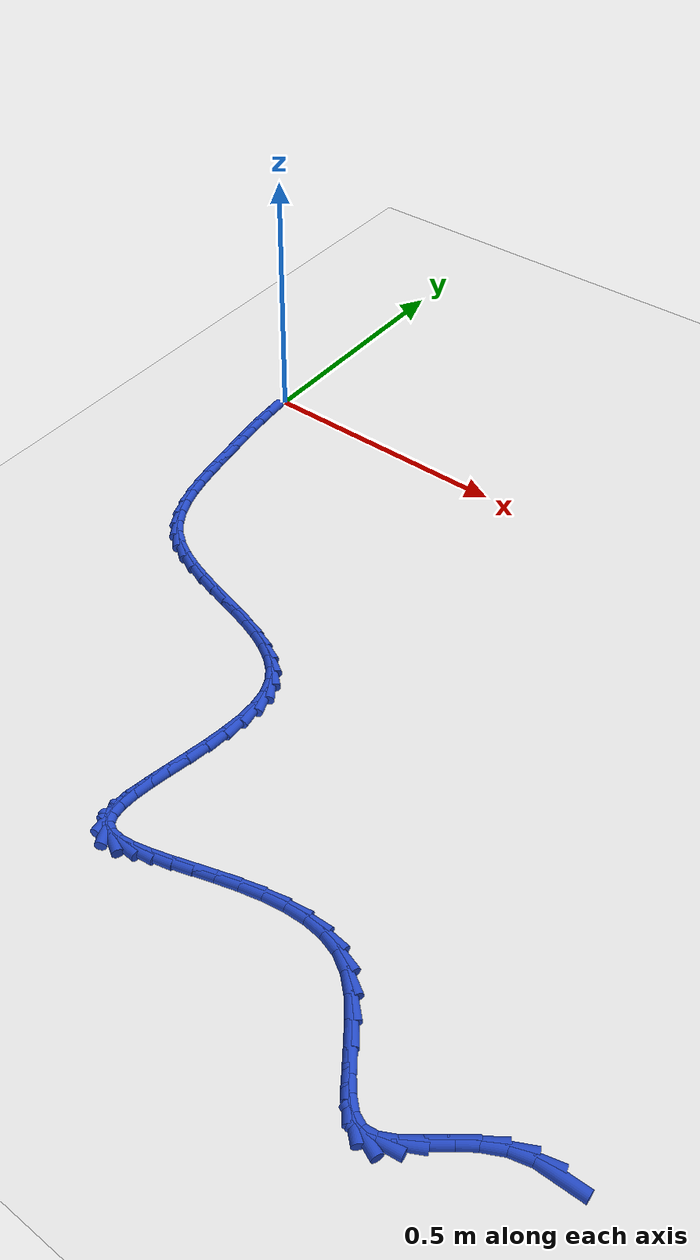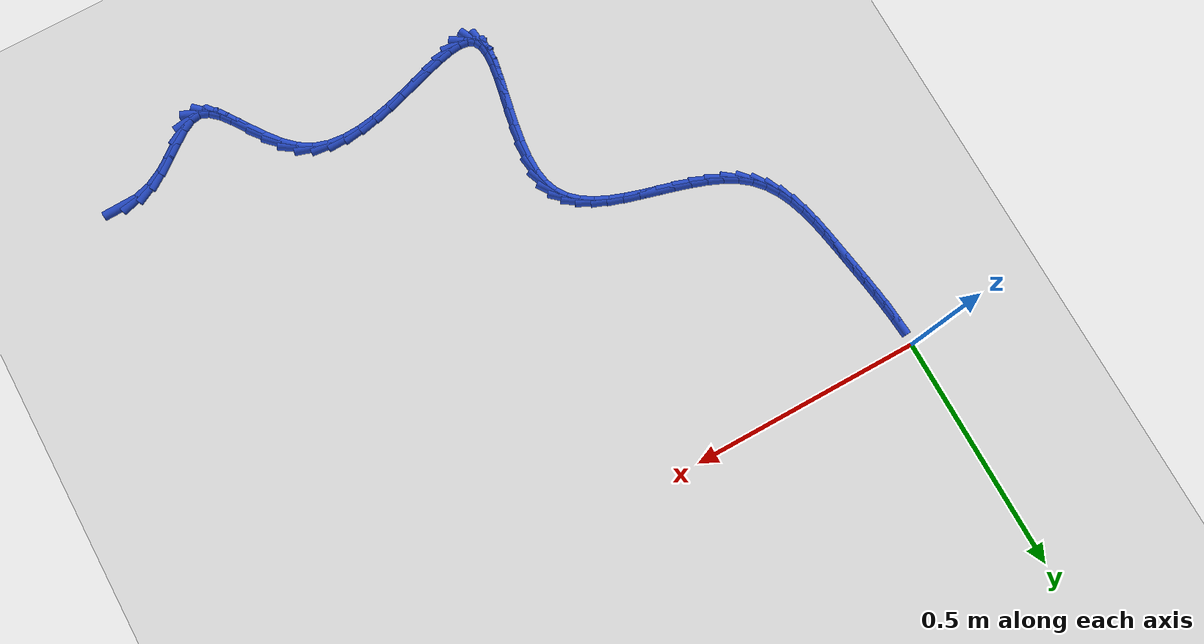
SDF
<sdf version="1.6">
 <world name="default">
  <model name="ground_plane">
   <static>1</static>
   <link name="link">
    <collision name="collision">
     <geometry><plane><normal>0 0 1</normal><size>100 100</size></plane></geometry>
     <surface><friction><ode><mu>100</mu><mu2>50</mu2></ode></friction></surface>
    </collision>
    <visual name="visual">
     <cast_shadows>0</cast_shadows>
     <geometry><plane><normal>0 0 1</normal><size>100 100</size></plane></geometry>
     <material>
      <script><uri>file://media/materials/scripts/gazebo.material</uri><name>Gazebo/WhiteGlow</name></script>
     </material>
    </visual>
   </link>
  </model>
  <model name="line">
   <link name="link_201">
    <pose>1.2782852491296195 -1.034169241811375 0.01 0 1.57 0.03010197148781163</pose>
    <collision name="collision">
     <geometry><cylinder><radius>0.01</radius><length>0.08</length></cylinder></geometry>
    </collision>
    <visual name="visual">
     <material>
      <script><name>Gazebo/Blue</name><uri>file://media/materials/scripts/gazebo.material</uri></script>
     </material>
     <geometry><cylinder><radius>0.01</radius><length>0.08</length></cylinder></geometry>
    </visual>
   </link>
   <link name="link_202">
    <pose>1.2419208620529707 -1.0352642123023665 0.01 0 1.57 0.26777520967814455</pose>
    <collision name="collision">
     <geometry><cylinder><radius>0.01</radius><length>0.08</length></cylinder></geometry>
    </collision>
    <visual name="visual">
     <material>
      <script><name>Gazebo/Blue</name><uri>file://media/materials/scripts/gazebo.material</uri></script>
     </material>
     <geometry><cylinder><radius>0.01</radius><length>0.08</length></cylinder></geometry>
    </visual>
   </link>
   <link name="link_203">
    <pose>1.207725733391031 -1.044646138518121 0.01 0 1.57 0.4852298560357493</pose>
    <collision name="collision">
     <geometry><cylinder><radius>0.01</radius><length>0.08</length></cylinder></geometry>
    </collision>
    <visual name="visual">
     <material>
      <script><name>Gazebo/Blue</name><uri>file://media/materials/scripts/gazebo.material</uri></script>
     </material>
     <geometry><cylinder><radius>0.01</radius><length>0.08</length></cylinder></geometry>
    </visual>
   </link>
   <link name="link_204">
    <pose>1.1759926435697527 -1.061378247462297 0.01 0 1.57 0.615958912828539</pose>
    <collision name="collision">
     <geometry><cylinder><radius>0.01</radius><length>0.08</length></cylinder></geometry>
    </collision>
    <visual name="visual">
     <material>
      <script><name>Gazebo/Blue</name><uri>file://media/materials/scripts/gazebo.material</uri></script>
     </material>
     <geometry><cylinder><radius>0.01</radius><length>0.08</length></cylinder></geometry>
    </visual>
   </link>
   <link name="link_205">
    <pose>1.1465999993271836 -1.0821831203023378 0.01 0 1.57 0.6681568193369394</pose>
    <collision name="collision">
     <geometry><cylinder><radius>0.01</radius><length>0.08</length></cylinder></geometry>
    </collision>
    <visual name="visual">
     <material>
      <script><name>Gazebo/Blue</name><uri>file://media/materials/scripts/gazebo.material</uri></script>
     </material>
     <geometry><cylinder><radius>0.01</radius><length>0.08</length></cylinder></geometry>
    </visual>
   </link>
   <link name="link_206">
    <pose>1.1194024305756598 -1.103649031588898 0.01 0 1.57 0.639783481457426</pose>
    <collision name="collision">
     <geometry><cylinder><radius>0.01</radius><length>0.08</length></cylinder></geometry>
    </collision>
    <visual name="visual">
     <material>
      <script><name>Gazebo/Blue</name><uri>file://media/materials/scripts/gazebo.material</uri></script>
     </material>
     <geometry><cylinder><radius>0.01</radius><length>0.08</length></cylinder></geometry>
    </visual>
   </link>
   <link name="link_207">
    <pose>1.0942545672275144 -1.122364255872635 0.01 0 1.57 0.49517678795158004</pose>
    <collision name="collision">
     <geometry><cylinder><radius>0.01</radius><length>0.08</length></cylinder></geometry>
    </collision>
    <visual name="visual">
     <material>
      <script><name>Gazebo/Blue</name><uri>file://media/materials/scripts/gazebo.material</uri></script>
     </material>
     <geometry><cylinder><radius>0.01</radius><length>0.08</length></cylinder></geometry>
    </visual>
   </link>
   <link name="link_208">
    <pose>1.0710110391950827 -1.1349170677042033 0.01 0 1.57 0.1378842615641196</pose>
    <collision name="collision">
     <geometry><cylinder><radius>0.01</radius><length>0.08</length></cylinder></geometry>
    </collision>
    <visual name="visual">
     <material>
      <script><name>Gazebo/Blue</name><uri>file://media/materials/scripts/gazebo.material</uri></script>
     </material>
     <geometry><cylinder><radius>0.01</radius><length>0.08</length></cylinder></geometry>
    </visual>
   </link>
   <link name="link_209">
    <pose>1.0495262373664125 -1.1378984015051912 0.01 0 1.57 -0.4021569375071794</pose>
    <collision name="collision">
     <geometry><cylinder><radius>0.01</radius><length>0.08</length></cylinder></geometry>
    </collision>
    <visual name="visual">
     <material>
      <script><name>Gazebo/Blue</name><uri>file://media/materials/scripts/gazebo.material</uri></script>
     </material>
     <geometry><cylinder><radius>0.01</radius><length>0.08</length></cylinder></geometry>
    </visual>
   </link>
   <link name="link_210">
    <pose>1.0295206500767977 -1.1293892641713648 0.01 0 1.57 -0.7527372762433178</pose>
    <collision name="collision">
     <geometry><cylinder><radius>0.01</radius><length>0.08</length></cylinder></geometry>
    </collision>
    <visual name="visual">
     <material>
      <script><name>Gazebo/Blue</name><uri>file://media/materials/scripts/gazebo.material</uri></script>
     </material>
     <geometry><cylinder><radius>0.01</radius><length>0.08</length></cylinder></geometry>
    </visual>
   </link>
   <link name="link_211">
    <pose>1.0103581312698602 -1.1114393030719851 0.01 0 1.57 -0.9144947390034753</pose>
    <collision name="collision">
     <geometry><cylinder><radius>0.01</radius><length>0.08</length></cylinder></geometry>
    </collision>
    <visual name="visual">
     <material>
      <script><name>Gazebo/Blue</name><uri>file://media/materials/scripts/gazebo.material</uri></script>
     </material>
     <geometry><cylinder><radius>0.01</radius><length>0.08</length></cylinder></geometry>
    </visual>
   </link>
   <link name="link_212">
    <pose>0.9913438102583627 -1.086751655403077 0.01 0 1.57 -0.972908167128245</pose>
    <collision name="collision">
     <geometry><cylinder><radius>0.01</radius><length>0.08</length></cylinder></geometry>
    </collision>
    <visual name="visual">
     <material>
      <script><name>Gazebo/Blue</name><uri>file://media/materials/scripts/gazebo.material</uri></script>
     </material>
     <geometry><cylinder><radius>0.01</radius><length>0.08</length></cylinder></geometry>
    </visual>
   </link>
   <link name="link_213">
    <pose>0.971782816355064 -1.0580294583606606 0.01 0 1.57 -0.9653373077936501</pose>
    <collision name="collision">
     <geometry><cylinder><radius>0.01</radius><length>0.08</length></cylinder></geometry>
    </collision>
    <visual name="visual">
     <material>
      <script><name>Gazebo/Blue</name><uri>file://media/materials/scripts/gazebo.material</uri></script>
     </material>
     <geometry><cylinder><radius>0.01</radius><length>0.08</length></cylinder></geometry>
    </visual>
   </link>
   <link name="link_214">
    <pose>0.9509802788727268 -1.0279758491407613 0.01 0 1.57 -0.9004620595122805</pose>
    <collision name="collision">
     <geometry><cylinder><radius>0.01</radius><length>0.08</length></cylinder></geometry>
    </collision>
    <visual name="visual">
     <material>
      <script><name>Gazebo/Blue</name><uri>file://media/materials/scripts/gazebo.material</uri></script>
     </material>
     <geometry><cylinder><radius>0.01</radius><length>0.08</length></cylinder></geometry>
    </visual>
   </link>
   <link name="link_215">
    <pose>0.9282413271241113 -0.9992939649394003 0.01 0 1.57 -0.7701281103035164</pose>
    <collision name="collision">
     <geometry><cylinder><radius>0.01</radius><length>0.08</length></cylinder></geometry>
    </collision>
    <visual name="visual">
     <material>
      <script><name>Gazebo/Blue</name><uri>file://media/materials/scripts/gazebo.material</uri></script>
     </material>
     <geometry><cylinder><radius>0.01</radius><length>0.08</length></cylinder></geometry>
    </visual>
   </link>
   <link name="link_216">
    <pose>0.9028710904219779 -0.9746869429526002 0.01 0 1.57 -0.5580387613973343</pose>
    <collision name="collision">
     <geometry><cylinder><radius>0.01</radius><length>0.08</length></cylinder></geometry>
    </collision>
    <visual name="visual">
     <material>
      <script><name>Gazebo/Blue</name><uri>file://media/materials/scripts/gazebo.material</uri></script>
     </material>
     <geometry><cylinder><radius>0.01</radius><length>0.08</length></cylinder></geometry>
    </visual>
   </link>
   <link name="link_217">
    <pose>0.8742000692010117 -0.9567898965084305 0.01 0 1.57 -0.31258239654138237</pose>
    <collision name="collision">
     <geometry><cylinder><radius>0.01</radius><length>0.08</length></cylinder></geometry>
    </collision>
    <visual name="visual">
     <material>
      <script><name>Gazebo/Blue</name><uri>file://media/materials/scripts/gazebo.material</uri></script>
     </material>
     <geometry><cylinder><radius>0.01</radius><length>0.08</length></cylinder></geometry>
    </visual>
   </link>
   <link name="link_218">
    <pose>0.8422234608979583 -0.9464557843564004 0.01 0 1.57 -0.11033810644250042</pose>
    <collision name="collision">
     <geometry><cylinder><radius>0.01</radius><length>0.08</length></cylinder></geometry>
    </collision>
    <visual name="visual">
     <material>
      <script><name>Gazebo/Blue</name><uri>file://media/materials/scripts/gazebo.material</uri></script>
     </material>
     <geometry><cylinder><radius>0.01</radius><length>0.08</length></cylinder></geometry>
    </visual>
   </link>
   <link name="link_219">
    <pose>0.8076496438300989 -0.9426254179554027 0.01 0 1.57 0.041705959419465664</pose>
    <collision name="collision">
     <geometry><cylinder><radius>0.01</radius><length>0.08</length></cylinder></geometry>
    </collision>
    <visual name="visual">
     <material>
      <script><name>Gazebo/Blue</name><uri>file://media/materials/scripts/gazebo.material</uri></script>
     </material>
     <geometry><cylinder><radius>0.01</radius><length>0.08</length></cylinder></geometry>
    </visual>
   </link>
   <link name="link_220">
    <pose>0.7712220792819201 -0.944145545950068 0.01 0 1.57 0.15114785216812648</pose>
    <collision name="collision">
     <geometry><cylinder><radius>0.01</radius><length>0.08</length></cylinder></geometry>
    </collision>
    <visual name="visual">
     <material>
      <script><name>Gazebo/Blue</name><uri>file://media/materials/scripts/gazebo.material</uri></script>
     </material>
     <geometry><cylinder><radius>0.01</radius><length>0.08</length></cylinder></geometry>
    </visual>
   </link>
   <link name="link_221">
    <pose>0.7336842285379137 -0.9498629169850284 0.01 0 1.57 0.22715274498045002</pose>
    <collision name="collision">
     <geometry><cylinder><radius>0.01</radius><length>0.08</length></cylinder></geometry>
    </collision>
    <visual name="visual">
     <material>
      <script><name>Gazebo/Blue</name><uri>file://media/materials/scripts/gazebo.material</uri></script>
     </material>
     <geometry><cylinder><radius>0.01</radius><length>0.08</length></cylinder></geometry>
    </visual>
   </link>
   <link name="link_222">
    <pose>0.6957795528825667 -0.9586242797049166 0.01 0 1.57 0.2765695326118681</pose>
    <collision name="collision">
     <geometry><cylinder><radius>0.01</radius><length>0.08</length></cylinder></geometry>
    </collision>
    <visual name="visual">
     <material>
      <script><name>Gazebo/Blue</name><uri>file://media/materials/scripts/gazebo.material</uri></script>
     </material>
     <geometry><cylinder><radius>0.01</radius><length>0.08</length></cylinder></geometry>
    </visual>
   </link>
   <link name="link_223">
    <pose>0.6582515136003706 -0.9692763827543631 0.01 0 1.57 0.30318787356138066</pose>
    <collision name="collision">
     <geometry><cylinder><radius>0.01</radius><length>0.08</length></cylinder></geometry>
    </collision>
    <visual name="visual">
     <material>
      <script><name>Gazebo/Blue</name><uri>file://media/materials/scripts/gazebo.material</uri></script>
     </material>
     <geometry><cylinder><radius>0.01</radius><length>0.08</length></cylinder></geometry>
    </visual>
   </link>
   <link name="link_224">
    <pose>0.6218435719758129 -0.9806659747780012 0.01 0 1.57 0.30759098639738786</pose>
    <collision name="collision">
     <geometry><cylinder><radius>0.01</radius><length>0.08</length></cylinder></geometry>
    </collision>
    <visual name="visual">
     <material>
      <script><name>Gazebo/Blue</name><uri>file://media/materials/scripts/gazebo.material</uri></script>
     </material>
     <geometry><cylinder><radius>0.01</radius><length>0.08</length></cylinder></geometry>
    </visual>
   </link>
   <link name="link_225">
    <pose>0.5872991892933844 -0.9916398044204616 0.01 0 1.57 0.28638207153162487</pose>
    <collision name="collision">
     <geometry><cylinder><radius>0.01</radius><length>0.08</length></cylinder></geometry>
    </collision>
    <visual name="visual">
     <material>
      <script><name>Gazebo/Blue</name><uri>file://media/materials/scripts/gazebo.material</uri></script>
     </material>
     <geometry><cylinder><radius>0.01</radius><length>0.08</length></cylinder></geometry>
    </visual>
   </link>
   <link name="link_226">
    <pose>0.5553618268375737 -1.0010446203263765 0.01 0 1.57 0.229639235563492</pose>
    <collision name="collision">
     <geometry><cylinder><radius>0.01</radius><length>0.08</length></cylinder></geometry>
    </collision>
    <visual name="visual">
     <material>
      <script><name>Gazebo/Blue</name><uri>file://media/materials/scripts/gazebo.material</uri></script>
     </material>
     <geometry><cylinder><radius>0.01</radius><length>0.08</length></cylinder></geometry>
    </visual>
   </link>
   <link name="link_227">
    <pose>0.5267749458928693 -1.0077271711403786 0.01 0 1.57 0.11410801893703401</pose>
    <collision name="collision">
     <geometry><cylinder><radius>0.01</radius><length>0.08</length></cylinder></geometry>
    </collision>
    <visual name="visual">
     <material>
      <script><name>Gazebo/Blue</name><uri>file://media/materials/scripts/gazebo.material</uri></script>
     </material>
     <geometry><cylinder><radius>0.01</radius><length>0.08</length></cylinder></geometry>
    </visual>
   </link>
   <link name="link_228">
    <pose>0.5022820077437621 -1.010534205507099 0.01 0 1.57 -0.11255574463263429</pose>
    <collision name="collision">
     <geometry><cylinder><radius>0.01</radius><length>0.08</length></cylinder></geometry>
    </collision>
    <visual name="visual">
     <material>
      <script><name>Gazebo/Blue</name><uri>file://media/materials/scripts/gazebo.material</uri></script>
     </material>
     <geometry><cylinder><radius>0.01</radius><length>0.08</length></cylinder></geometry>
    </visual>
   </link>
   <link name="link_229">
    <pose>0.4826264736747399 -1.0083124720711696 0.01 0 1.57 -0.5382722628979292</pose>
    <collision name="collision">
     <geometry><cylinder><radius>0.01</radius><length>0.08</length></cylinder></geometry>
    </collision>
    <visual name="visual">
     <material>
      <script><name>Gazebo/Blue</name><uri>file://media/materials/scripts/gazebo.material</uri></script>
     </material>
     <geometry><cylinder><radius>0.01</radius><length>0.08</length></cylinder></geometry>
    </visual>
   </link>
   <link name="link_230">
    <pose>0.46855180497029325 -0.9999087194772224 0.01 0 1.57 -1.090599036576024</pose>
    <collision name="collision">
     <geometry><cylinder><radius>0.01</radius><length>0.08</length></cylinder></geometry>
    </collision>
    <visual name="visual">
     <material>
      <script><name>Gazebo/Blue</name><uri>file://media/materials/scripts/gazebo.material</uri></script>
     </material>
     <geometry><cylinder><radius>0.01</radius><length>0.08</length></cylinder></geometry>
    </visual>
   </link>
   <link name="link_231">
    <pose>0.4605263428157718 -0.9845006693382079 0.01 0 1.57 -1.4457983551452045</pose>
    <collision name="collision">
     <geometry><cylinder><radius>0.01</radius><length>0.08</length></cylinder></geometry>
    </collision>
    <visual name="visual">
     <material>
      <script><name>Gazebo/Blue</name><uri>file://media/materials/scripts/gazebo.material</uri></script>
     </material>
     <geometry><cylinder><radius>0.01</radius><length>0.08</length></cylinder></geometry>
    </visual>
   </link>
   <link name="link_232">
    <pose>0.4577922000103411 -0.9627412115666033 0.01 0 1.57 1.5169505237778111</pose>
    <collision name="collision">
     <geometry><cylinder><radius>0.01</radius><length>0.08</length></cylinder></geometry>
    </collision>
    <visual name="visual">
     <material>
      <script><name>Gazebo/Blue</name><uri>file://media/materials/scripts/gazebo.material</uri></script>
     </material>
     <geometry><cylinder><radius>0.01</radius><length>0.08</length></cylinder></geometry>
    </visual>
   </link>
   <link name="link_233">
    <pose>0.4592499841632871 -0.9356940711492546 0.01 0 1.57 1.4262988968919976</pose>
    <collision name="collision">
     <geometry><cylinder><radius>0.01</radius><length>0.08</length></cylinder></geometry>
    </collision>
    <visual name="visual">
     <material>
      <script><name>Gazebo/Blue</name><uri>file://media/materials/scripts/gazebo.material</uri></script>
     </material>
     <geometry><cylinder><radius>0.01</radius><length>0.08</length></cylinder></geometry>
    </visual>
   </link>
   <link name="link_234">
    <pose>0.46380028850796096 -0.9044229903674428 0.01 0 1.57 1.3829930402699435</pose>
    <collision name="collision">
     <geometry><cylinder><radius>0.01</radius><length>0.08</length></cylinder></geometry>
    </collision>
    <visual name="visual">
     <material>
      <script><name>Gazebo/Blue</name><uri>file://media/materials/scripts/gazebo.material</uri></script>
     </material>
     <geometry><cylinder><radius>0.01</radius><length>0.08</length></cylinder></geometry>
    </visual>
   </link>
   <link name="link_235">
    <pose>0.470343706277714 -0.8699917115024457 0.01 0 1.57 1.3699395959034786</pose>
    <collision name="collision">
     <geometry><cylinder><radius>0.01</radius><length>0.08</length></cylinder></geometry>
    </collision>
    <visual name="visual">
     <material>
      <script><name>Gazebo/Blue</name><uri>file://media/materials/scripts/gazebo.material</uri></script>
     </material>
     <geometry><cylinder><radius>0.01</radius><length>0.08</length></cylinder></geometry>
    </visual>
   </link>
   <link name="link_236">
    <pose>0.4777808307058978 -0.8334639768355415 0.01 0 1.57 1.3805959471654998</pose>
    <collision name="collision">
     <geometry><cylinder><radius>0.01</radius><length>0.08</length></cylinder></geometry>
    </collision>
    <visual name="visual">
     <material>
      <script><name>Gazebo/Blue</name><uri>file://media/materials/scripts/gazebo.material</uri></script>
     </material>
     <geometry><cylinder><radius>0.01</radius><length>0.08</length></cylinder></geometry>
    </visual>
   </link>
   <link name="link_237">
    <pose>0.4850122550258633 -0.7959035286480117 0.01 0 1.57 1.414178340664887</pose>
    <collision name="collision">
     <geometry><cylinder><radius>0.01</radius><length>0.08</length></cylinder></geometry>
    </collision>
    <visual name="visual">
     <material>
      <script><name>Gazebo/Blue</name><uri>file://media/materials/scripts/gazebo.material</uri></script>
     </material>
     <geometry><cylinder><radius>0.01</radius><length>0.08</length></cylinder></geometry>
    </visual>
   </link>
   <link name="link_238">
    <pose>0.490938572470962 -0.7583741092211325 0.01 0 1.57 1.4744348523193962</pose>
    <collision name="collision">
     <geometry><cylinder><radius>0.01</radius><length>0.08</length></cylinder></geometry>
    </collision>
    <visual name="visual">
     <material>
      <script><name>Gazebo/Blue</name><uri>file://media/materials/scripts/gazebo.material</uri></script>
     </material>
     <geometry><cylinder><radius>0.01</radius><length>0.08</length></cylinder></geometry>
    </visual>
   </link>
   <link name="link_239">
    <pose>0.494460376274545 -0.7219394608361855 0.01 0 1.57 1.5702745820368056</pose>
    <collision name="collision">
     <geometry><cylinder><radius>0.01</radius><length>0.08</length></cylinder></geometry>
    </collision>
    <visual name="visual">
     <material>
      <script><name>Gazebo/Blue</name><uri>file://media/materials/scripts/gazebo.material</uri></script>
     </material>
     <geometry><cylinder><radius>0.01</radius><length>0.08</length></cylinder></geometry>
    </visual>
   </link>
   <link name="link_240">
    <pose>0.4944782596699638 -0.6876633257744476 0.01 0 1.57 -1.4241947891159823</pose>
    <collision name="collision">
     <geometry><cylinder><radius>0.01</radius><length>0.08</length></cylinder></geometry>
    </collision>
    <visual name="visual">
     <material>
      <script><name>Gazebo/Blue</name><uri>file://media/materials/scripts/gazebo.material</uri></script>
     </material>
     <geometry><cylinder><radius>0.01</radius><length>0.08</length></cylinder></geometry>
    </visual>
   </link>
   <link name="link_241">
    <pose>0.4898928158905695 -0.6566094463171996 0.01 0 1.57 -1.2066870116404917</pose>
    <collision name="collision">
     <geometry><cylinder><radius>0.01</radius><length>0.08</length></cylinder></geometry>
    </collision>
    <visual name="visual">
     <material>
      <script><name>Gazebo/Blue</name><uri>file://media/materials/scripts/gazebo.material</uri></script>
     </material>
     <geometry><cylinder><radius>0.01</radius><length>0.08</length></cylinder></geometry>
    </visual>
   </link>
   <link name="link_242">
    <pose>0.479669324925111 -0.6297832949327965 0.01 0 1.57 -0.9555218122933083</pose>
    <collision name="collision">
     <geometry><cylinder><radius>0.01</radius><length>0.08</length></cylinder></geometry>
    </collision>
    <visual name="visual">
     <material>
      <script><name>Gazebo/Blue</name><uri>file://media/materials/scripts/gazebo.material</uri></script>
     </material>
     <geometry><cylinder><radius>0.01</radius><length>0.08</length></cylinder></geometry>
    </visual>
   </link>
   <link name="link_243">
    <pose>0.4637716596255746 -0.6072908118906336 0.01 0 1.57 -0.7333145373362878</pose>
    <collision name="collision">
     <geometry><cylinder><radius>0.01</radius><length>0.08</length></cylinder></geometry>
    </collision>
    <visual name="visual">
     <material>
      <script><name>Gazebo/Blue</name><uri>file://media/materials/scripts/gazebo.material</uri></script>
     </material>
     <geometry><cylinder><radius>0.01</radius><length>0.08</length></cylinder></geometry>
    </visual>
   </link>
   <link name="link_244">
    <pose>0.4429484152449068 -0.5885310597195359 0.01 0 1.57 -0.5596079821346868</pose>
    <collision name="collision">
     <geometry><cylinder><radius>0.01</radius><length>0.08</length></cylinder></geometry>
    </collision>
    <visual name="visual">
     <material>
      <script><name>Gazebo/Blue</name><uri>file://media/materials/scripts/gazebo.material</uri></script>
     </material>
     <geometry><cylinder><radius>0.01</radius><length>0.08</length></cylinder></geometry>
    </visual>
   </link>
   <link name="link_245">
    <pose>0.4179693192870567 -0.5728840650219669 0.01 0 1.57 -0.43422476425045237</pose>
    <collision name="collision">
     <geometry><cylinder><radius>0.01</radius><length>0.08</length></cylinder></geometry>
    </collision>
    <visual name="visual">
     <material>
      <script><name>Gazebo/Blue</name><uri>file://media/materials/scripts/gazebo.material</uri></script>
     </material>
     <geometry><cylinder><radius>0.01</radius><length>0.08</length></cylinder></geometry>
    </visual>
   </link>
   <link name="link_246">
    <pose>0.389604099255972 -0.5597298544003889 0.01 0 1.57 -0.3492087406317524</pose>
    <collision name="collision">
     <geometry><cylinder><radius>0.01</radius><length>0.08</length></cylinder></geometry>
    </collision>
    <visual name="visual">
     <material>
      <script><name>Gazebo/Blue</name><uri>file://media/materials/scripts/gazebo.material</uri></script>
     </material>
     <geometry><cylinder><radius>0.01</radius><length>0.08</length></cylinder></geometry>
    </visual>
   </link>
   <link name="link_247">
    <pose>0.3586224826555993 -0.5484484544572638 0.01 0 1.57 -0.29648166202216353</pose>
    <collision name="collision">
     <geometry><cylinder><radius>0.01</radius><length>0.08</length></cylinder></geometry>
    </collision>
    <visual name="visual">
     <material>
      <script><name>Gazebo/Blue</name><uri>file://media/materials/scripts/gazebo.material</uri></script>
     </material>
     <geometry><cylinder><radius>0.01</radius><length>0.08</length></cylinder></geometry>
    </visual>
   </link>
   <link name="link_248">
    <pose>0.32579419698988893 -0.538419891795055 0.01 0 1.57 -0.2703328614460111</pose>
    <collision name="collision">
     <geometry><cylinder><radius>0.01</radius><length>0.08</length></cylinder></geometry>
    </collision>
    <visual name="visual">
     <material>
      <script><name>Gazebo/Blue</name><uri>file://media/materials/scripts/gazebo.material</uri></script>
     </material>
     <geometry><cylinder><radius>0.01</radius><length>0.08</length></cylinder></geometry>
    </visual>
   </link>
   <link name="link_249">
    <pose>0.2918889697627868 -0.5290241930162245 0.01 0 1.57 -0.26767006610871164</pose>
    <collision name="collision">
     <geometry><cylinder><radius>0.01</radius><length>0.08</length></cylinder></geometry>
    </collision>
    <visual name="visual">
     <material>
      <script><name>Gazebo/Blue</name><uri>file://media/materials/scripts/gazebo.material</uri></script>
     </material>
     <geometry><cylinder><radius>0.01</radius><length>0.08</length></cylinder></geometry>
    </visual>
   </link>
   <link name="link_250">
    <pose>0.25767652847824296 -0.5196413847232355 0.01 0 1.57 -0.2877806597331135</pose>
    <collision name="collision">
     <geometry><cylinder><radius>0.01</radius><length>0.08</length></cylinder></geometry>
    </collision>
    <visual name="visual">
     <material>
      <script><name>Gazebo/Blue</name><uri>file://media/materials/scripts/gazebo.material</uri></script>
     </material>
     <geometry><cylinder><radius>0.01</radius><length>0.08</length></cylinder></geometry>
    </visual>
   </link>
   <link name="link_251">
    <pose>0.22392660064020345 -0.5096514935185498 0.01 0 1.57 -0.3321680829139376</pose>
    <collision name="collision">
     <geometry><cylinder><radius>0.01</radius><length>0.08</length></cylinder></geometry>
    </collision>
    <visual name="visual">
     <material>
      <script><name>Gazebo/Blue</name><uri>file://media/materials/scripts/gazebo.material</uri></script>
     </material>
     <geometry><cylinder><radius>0.01</radius><length>0.08</length></cylinder></geometry>
    </visual>
   </link>
   <link name="link_252">
    <pose>0.19140891375261834 -0.49843454600463083 0.01 0 1.57 -0.40449893035414786</pose>
    <collision name="collision">
     <geometry><cylinder><radius>0.01</radius><length>0.08</length></cylinder></geometry>
    </collision>
    <visual name="visual">
     <material>
      <script><name>Gazebo/Blue</name><uri>file://media/materials/scripts/gazebo.material</uri></script>
     </material>
     <geometry><cylinder><radius>0.01</radius><length>0.08</length></cylinder></geometry>
    </visual>
   </link>
   <link name="link_253">
    <pose>0.16089319531943372 -0.4853705687839403 0.01 0 1.57 -0.5103326674878639</pose>
    <collision name="collision">
     <geometry><cylinder><radius>0.01</radius><length>0.08</length></cylinder></geometry>
    </collision>
    <visual name="visual">
     <material>
      <script><name>Gazebo/Blue</name><uri>file://media/materials/scripts/gazebo.material</uri></script>
     </material>
     <geometry><cylinder><radius>0.01</radius><length>0.08</length></cylinder></geometry>
    </visual>
   </link>
   <link name="link_254">
    <pose>0.13314917284459946 -0.4698395884589418 0.01 0 1.57 -0.6557104992946005</pose>
    <collision name="collision">
     <geometry><cylinder><radius>0.01</radius><length>0.08</length></cylinder></geometry>
    </collision>
    <visual name="visual">
     <material>
      <script><name>Gazebo/Blue</name><uri>file://media/materials/scripts/gazebo.material</uri></script>
     </material>
     <geometry><cylinder><radius>0.01</radius><length>0.08</length></cylinder></geometry>
    </visual>
   </link>
   <link name="link_255">
    <pose>0.10894657383206197 -0.4512216316320967 0.01 0 1.57 -0.8359967289902517</pose>
    <collision name="collision">
     <geometry><cylinder><radius>0.01</radius><length>0.08</length></cylinder></geometry>
    </collision>
    <visual name="visual">
     <material>
      <script><name>Gazebo/Blue</name><uri>file://media/materials/scripts/gazebo.material</uri></script>
     </material>
     <geometry><cylinder><radius>0.01</radius><length>0.08</length></cylinder></geometry>
    </visual>
   </link>
   <link name="link_256">
    <pose>0.08890018354849129 -0.4290365647228693 0.01 0 1.57 -1.0047726828247587</pose>
    <collision name="collision">
     <geometry><cylinder><radius>0.01</radius><length>0.08</length></cylinder></geometry>
    </collision>
    <visual name="visual">
     <material>
      <script><name>Gazebo/Blue</name><uri>file://media/materials/scripts/gazebo.material</uri></script>
     </material>
     <geometry><cylinder><radius>0.01</radius><length>0.08</length></cylinder></geometry>
    </visual>
   </link>
   <link name="link_257">
    <pose>0.07274016638621347 -0.4036026498842212 0.01 0 1.57 -1.1414402245546393</pose>
    <collision name="collision">
     <geometry><cylinder><radius>0.01</radius><length>0.08</length></cylinder></geometry>
    </collision>
    <visual name="visual">
     <material>
      <script><name>Gazebo/Blue</name><uri>file://media/materials/scripts/gazebo.material</uri></script>
     </material>
     <geometry><cylinder><radius>0.01</radius><length>0.08</length></cylinder></geometry>
    </visual>
   </link>
   <link name="link_258">
    <pose>0.059883232877897076 -0.37552105037563144 0.01 0 1.57 -1.246213223137936</pose>
    <collision name="collision">
     <geometry><cylinder><radius>0.01</radius><length>0.08</length></cylinder></geometry>
    </collision>
    <visual name="visual">
     <material>
      <script><name>Gazebo/Blue</name><uri>file://media/materials/scripts/gazebo.material</uri></script>
     </material>
     <geometry><cylinder><radius>0.01</radius><length>0.08</length></cylinder></geometry>
    </visual>
   </link>
   <link name="link_259">
    <pose>0.04974572609075681 -0.3453932611047033 0.01 0 1.57 -1.3225824492856473</pose>
    <collision name="collision">
     <geometry><cylinder><radius>0.01</radius><length>0.08</length></cylinder></geometry>
    </collision>
    <visual name="visual">
     <material>
      <script><name>Gazebo/Blue</name><uri>file://media/materials/scripts/gazebo.material</uri></script>
     </material>
     <geometry><cylinder><radius>0.01</radius><length>0.08</length></cylinder></geometry>
    </visual>
   </link>
   <link name="link_260">
    <pose>0.04174398909200611 -0.3138207769790362 0.01 0 1.57 -1.3743950424220905</pose>
    <collision name="collision">
     <geometry><cylinder><radius>0.01</radius><length>0.08</length></cylinder></geometry>
    </collision>
    <visual name="visual">
     <material>
      <script><name>Gazebo/Blue</name><uri>file://media/materials/scripts/gazebo.material</uri></script>
     </material>
     <geometry><cylinder><radius>0.01</radius><length>0.08</length></cylinder></geometry>
    </visual>
   </link>
   <link name="link_261">
    <pose>0.035294364948859486 -0.28140509290623344 0.01 0 1.57 -1.404507674020307</pose>
    <collision name="collision">
     <geometry><cylinder><radius>0.01</radius><length>0.08</length></cylinder></geometry>
    </collision>
    <visual name="visual">
     <material>
      <script><name>Gazebo/Blue</name><uri>file://media/materials/scripts/gazebo.material</uri></script>
     </material>
     <geometry><cylinder><radius>0.01</radius><length>0.08</length></cylinder></geometry>
    </visual>
   </link>
   <link name="link_262">
    <pose>0.029813196728530562 -0.24874770379389474 0.01 0 1.57 -1.4146530230239518</pose>
    <collision name="collision">
     <geometry><cylinder><radius>0.01</radius><length>0.08</length></cylinder></geometry>
    </collision>
    <visual name="visual">
     <material>
      <script><name>Gazebo/Blue</name><uri>file://media/materials/scripts/gazebo.material</uri></script>
     </material>
     <geometry><cylinder><radius>0.01</radius><length>0.08</length></cylinder></geometry>
    </visual>
   </link>
   <link name="link_263">
    <pose>0.02472708272053521 -0.2164394833798155 0.01 0 1.57 -1.4159385495925074</pose>
    <collision name="collision">
     <geometry><cylinder><radius>0.01</radius><length>0.08</length></cylinder></geometry>
    </collision>
    <visual name="visual">
     <material>
      <script><name>Gazebo/Blue</name><uri>file://media/materials/scripts/gazebo.material</uri></script>
     </material>
     <geometry><cylinder><radius>0.01</radius><length>0.08</length></cylinder></geometry>
    </visual>
   </link>
   <link name="link_264">
    <pose>0.019779102228680887 -0.1847435310742373 0.01 0 1.57 -1.421363758257301</pose>
    <collision name="collision">
     <geometry><cylinder><radius>0.01</radius><length>0.08</length></cylinder></geometry>
    </collision>
    <visual name="visual">
     <material>
      <script><name>Gazebo/Blue</name><uri>file://media/materials/scripts/gazebo.material</uri></script>
     </material>
     <geometry><cylinder><radius>0.01</radius><length>0.08</length></cylinder></geometry>
    </visual>
   </link>
   <link name="link_265">
    <pose>0.015081370210312861 -0.15354074196007583 0.01 0 1.57 -1.431844085550371</pose>
    <collision name="collision">
     <geometry><cylinder><radius>0.01</radius><length>0.08</length></cylinder></geometry>
    </collision>
    <visual name="visual">
     <material>
      <script><name>Gazebo/Blue</name><uri>file://media/materials/scripts/gazebo.material</uri></script>
     </material>
     <geometry><cylinder><radius>0.01</radius><length>0.08</length></cylinder></geometry>
    </visual>
   </link>
   <link name="link_266">
    <pose>0.010766845601980447 -0.12269042334417193 0.01 0 1.57 -1.447452452665864</pose>
    <collision name="collision">
     <geometry><cylinder><radius>0.01</radius><length>0.08</length></cylinder></geometry>
    </collision>
    <visual name="visual">
     <material>
      <script><name>Gazebo/Blue</name><uri>file://media/materials/scripts/gazebo.material</uri></script>
     </material>
     <geometry><cylinder><radius>0.01</radius><length>0.08</length></cylinder></geometry>
    </visual>
   </link>
   <link name="link_267">
    <pose>0.0069684873402334705 -0.09205188253337028 0.01 0 1.57 -1.468132855406158</pose>
    <collision name="collision">
     <geometry><cylinder><radius>0.01</radius><length>0.08</length></cylinder></geometry>
    </collision>
    <visual name="visual">
     <material>
      <script><name>Gazebo/Blue</name><uri>file://media/materials/scripts/gazebo.material</uri></script>
     </material>
     <geometry><cylinder><radius>0.01</radius><length>0.08</length></cylinder></geometry>
    </visual>
   </link>
   <link name="link_268">
    <pose>0.003819254361621362 -0.06148442683451266 0.01 0 1.57 -1.4936853092812514</pose>
    <collision name="collision">
     <geometry><cylinder><radius>0.01</radius><length>0.08</length></cylinder></geometry>
    </collision>
    <visual name="visual">
     <material>
      <script><name>Gazebo/Blue</name><uri>file://media/materials/scripts/gazebo.material</uri></script>
     </material>
     <geometry><cylinder><radius>0.01</radius><length>0.08</length></cylinder></geometry>
    </visual>
   </link>
  </model>
 </world>
</sdf>
